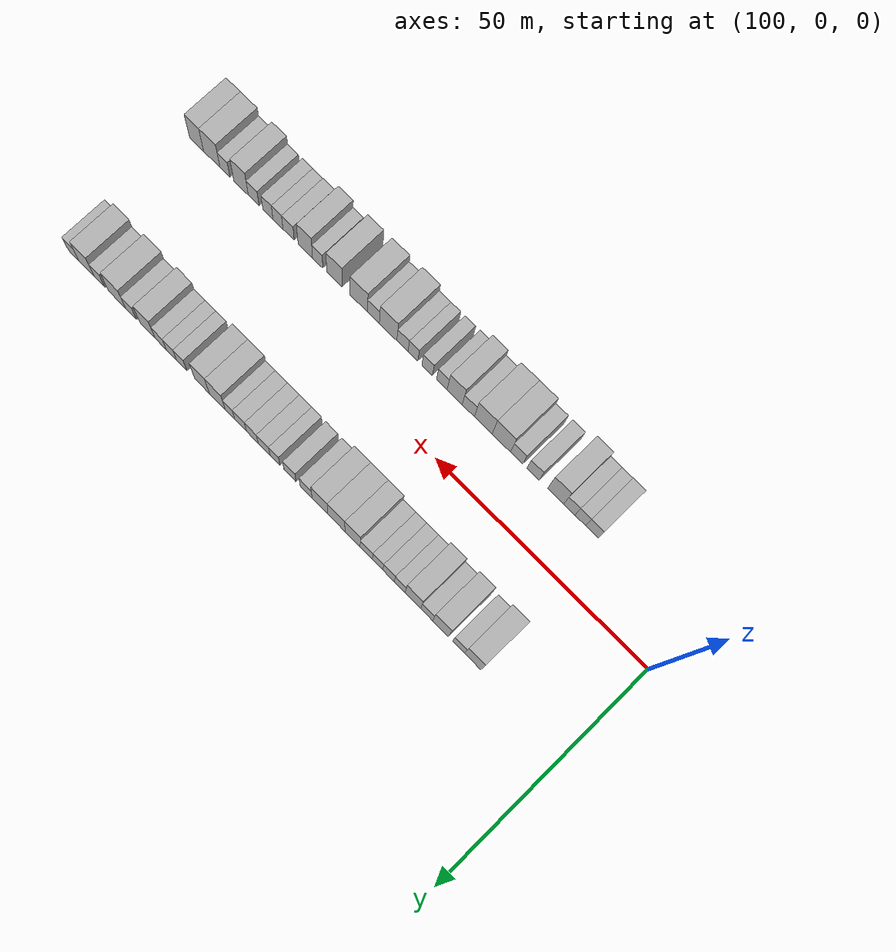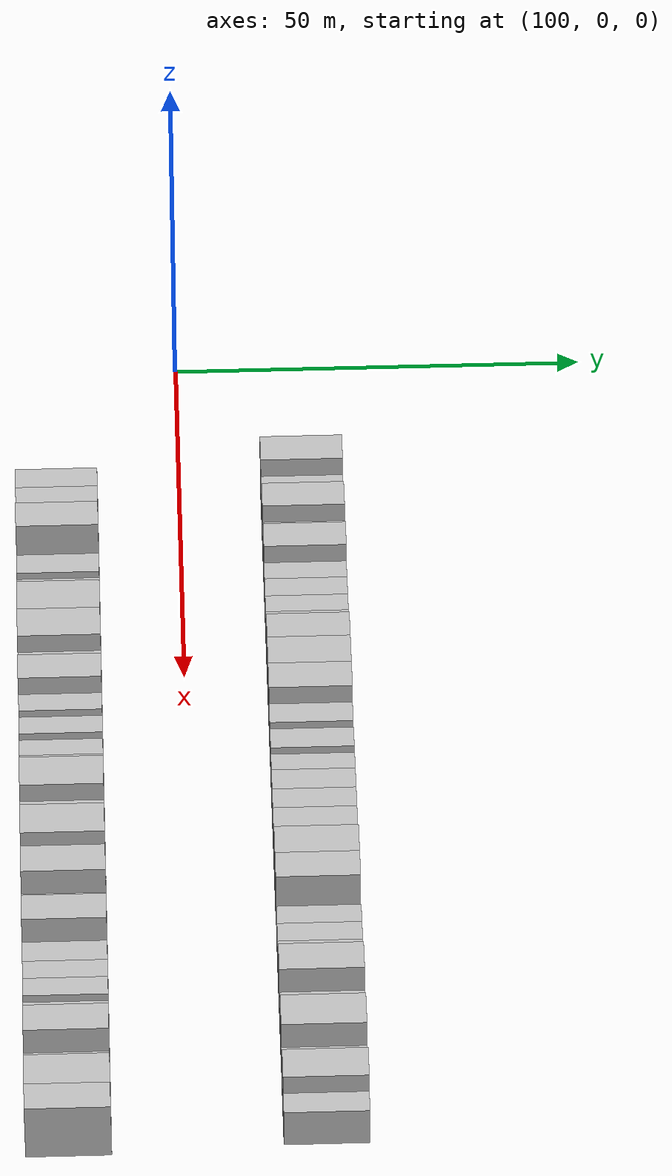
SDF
<sdf version="1.6">
 <world name="default">
  <model name="building_30">
   <static>1</static>
   <pose>121.2008 15.0000 0 0.000000 0.000000 1.570796</pose>
   <link name="link">
    <pose>0 0 4.50 0 0 0</pose>
    <collision name="collision"><geometry><box><size>10.0000 3.8482 9.0000</size></box></geometry></collision>
    <visual name="visual">
     <cast_shadows>0</cast_shadows>
     <geometry><box><size>10.0000 3.8482 9.0000</size></box></geometry>
     <material>
      <script>
       <uri>model://HANNAS_wall/materials/scripts</uri>
       <uri>model://HANNAS_wall/materials/textures</uri>
       <name>vrc/HANNAS_wall</name>
      </script>
     </material>
    </visual>
   </link>
  </model>
  <model name="building_31">
   <static>1</static>
   <pose>124.5239 15.0000 0 0.000000 0.000000 1.570796</pose>
   <link name="link">
    <pose>0 0 3.00 0 0 0</pose>
    <collision name="collision"><geometry><box><size>10.0000 2.7982 6.0000</size></box></geometry></collision>
    <visual name="visual">
     <cast_shadows>0</cast_shadows>
     <geometry><box><size>10.0000 2.7982 6.0000</size></box></geometry>
     <material>
      <script>
       <uri>model://HANNAS_wall/materials/scripts</uri>
       <uri>model://HANNAS_wall/materials/textures</uri>
       <name>vrc/HANNAS_wall</name>
      </script>
     </material>
    </visual>
   </link>
  </model>
  <model name="building_32">
   <static>1</static>
   <pose>128.7800 15.0000 0 0.000000 0.000000 1.570796</pose>
   <link name="link">
    <pose>0 0 4.50 0 0 0</pose>
    <collision name="collision"><geometry><box><size>10.0000 3.7140 9.0000</size></box></geometry></collision>
    <visual name="visual">
     <cast_shadows>0</cast_shadows>
     <geometry><box><size>10.0000 3.7140 9.0000</size></box></geometry>
     <material>
      <script>
       <uri>model://HANNAS_wall/materials/scripts</uri>
       <uri>model://HANNAS_wall/materials/textures</uri>
       <name>vrc/HANNAS_wall</name>
      </script>
     </material>
    </visual>
   </link>
  </model>
  <model name="building_33">
   <static>1</static>
   <pose>132.0614 15.0000 0 0.000000 0.000000 1.570796</pose>
   <link name="link">
    <pose>0 0 3.00 0 0 0</pose>
    <collision name="collision"><geometry><box><size>10.0000 2.8488 6.0000</size></box></geometry></collision>
    <visual name="visual">
     <cast_shadows>0</cast_shadows>
     <geometry><box><size>10.0000 2.8488 6.0000</size></box></geometry>
     <material>
      <script>
       <uri>model://HANNAS_wall/materials/scripts</uri>
       <uri>model://HANNAS_wall/materials/textures</uri>
       <name>vrc/HANNAS_wall</name>
      </script>
     </material>
    </visual>
   </link>
  </model>
  <model name="building_34">
   <static>1</static>
   <pose>135.3368 15.0000 0 0.000000 0.000000 1.570796</pose>
   <link name="link">
    <pose>0 0 4.50 0 0 0</pose>
    <collision name="collision"><geometry><box><size>10.0000 3.7020 9.0000</size></box></geometry></collision>
    <visual name="visual">
     <cast_shadows>0</cast_shadows>
     <geometry><box><size>10.0000 3.7020 9.0000</size></box></geometry>
     <material>
      <script>
       <uri>model://HANNAS_wall/materials/scripts</uri>
       <uri>model://HANNAS_wall/materials/textures</uri>
       <name>vrc/HANNAS_wall</name>
      </script>
     </material>
    </visual>
   </link>
  </model>
  <model name="building_35">
   <static>1</static>
   <pose>138.4774 15.0000 0 0.000000 0.000000 1.570796</pose>
   <link name="link">
    <pose>0 0 3.00 0 0 0</pose>
    <collision name="collision"><geometry><box><size>10.0000 2.5791 6.0000</size></box></geometry></collision>
    <visual name="visual">
     <cast_shadows>0</cast_shadows>
     <geometry><box><size>10.0000 2.5791 6.0000</size></box></geometry>
     <material>
      <script>
       <uri>model://HANNAS_wall/materials/scripts</uri>
       <uri>model://HANNAS_wall/materials/textures</uri>
       <name>vrc/HANNAS_wall</name>
      </script>
     </material>
    </visual>
   </link>
  </model>
  <model name="building_36">
   <static>1</static>
   <pose>141.1463 15.0000 0 0.000000 0.000000 1.570796</pose>
   <link name="link">
    <pose>0 0 3.00 0 0 0</pose>
    <collision name="collision"><geometry><box><size>10.0000 2.7586 6.0000</size></box></geometry></collision>
    <visual name="visual">
     <cast_shadows>0</cast_shadows>
     <geometry><box><size>10.0000 2.7586 6.0000</size></box></geometry>
     <material>
      <script>
       <uri>model://HANNAS_wall/materials/scripts</uri>
       <uri>model://HANNAS_wall/materials/textures</uri>
       <name>vrc/HANNAS_wall</name>
      </script>
     </material>
    </visual>
   </link>
  </model>
  <model name="building_37">
   <static>1</static>
   <pose>143.7925 15.0000 0 0.000000 0.000000 1.570796</pose>
   <link name="link">
    <pose>0 0 3.00 0 0 0</pose>
    <collision name="collision"><geometry><box><size>10.0000 2.5339 6.0000</size></box></geometry></collision>
    <visual name="visual">
     <cast_shadows>0</cast_shadows>
     <geometry><box><size>10.0000 2.5339 6.0000</size></box></geometry>
     <material>
      <script>
       <uri>model://HANNAS_wall/materials/scripts</uri>
       <uri>model://HANNAS_wall/materials/textures</uri>
       <name>vrc/HANNAS_wall</name>
      </script>
     </material>
    </visual>
   </link>
  </model>
  <model name="building_38">
   <static>1</static>
   <pose>146.5416 15.0000 0 0.000000 0.000000 1.570796</pose>
   <link name="link">
    <pose>0 0 3.00 0 0 0</pose>
    <collision name="collision"><geometry><box><size>10.0000 2.9643 6.0000</size></box></geometry></collision>
    <visual name="visual">
     <cast_shadows>0</cast_shadows>
     <geometry><box><size>10.0000 2.9643 6.0000</size></box></geometry>
     <material>
      <script>
       <uri>model://HANNAS_wall/materials/scripts</uri>
       <uri>model://HANNAS_wall/materials/textures</uri>
       <name>vrc/HANNAS_wall</name>
      </script>
     </material>
    </visual>
   </link>
  </model>
  <model name="building_39">
   <static>1</static>
   <pose>149.8689 15.0000 0 0.000000 0.000000 1.570796</pose>
   <link name="link">
    <pose>0 0 4.50 0 0 0</pose>
    <collision name="collision"><geometry><box><size>10.0000 3.6902 9.0000</size></box></geometry></collision>
    <visual name="visual">
     <cast_shadows>0</cast_shadows>
     <geometry><box><size>10.0000 3.6902 9.0000</size></box></geometry>
     <material>
      <script>
       <uri>model://HANNAS_wall/materials/scripts</uri>
       <uri>model://HANNAS_wall/materials/textures</uri>
       <name>vrc/HANNAS_wall</name>
      </script>
     </material>
    </visual>
   </link>
  </model>
  <model name="building_40">
   <static>1</static>
   <pose>153.7895 15.0000 0 0.000000 0.000000 1.570796</pose>
   <link name="link">
    <pose>0 0 4.50 0 0 0</pose>
    <collision name="collision"><geometry><box><size>10.0000 4.1510 9.0000</size></box></geometry></collision>
    <visual name="visual">
     <cast_shadows>0</cast_shadows>
     <geometry><box><size>10.0000 4.1510 9.0000</size></box></geometry>
     <material>
      <script>
       <uri>model://HANNAS_wall/materials/scripts</uri>
       <uri>model://HANNAS_wall/materials/textures</uri>
       <name>vrc/HANNAS_wall</name>
      </script>
     </material>
    </visual>
   </link>
  </model>
  <model name="building_41">
   <static>1</static>
   <pose>157.8020 15.0000 0 0.000000 0.000000 1.570796</pose>
   <link name="link">
    <pose>0 0 4.50 0 0 0</pose>
    <collision name="collision"><geometry><box><size>10.0000 3.8740 9.0000</size></box></geometry></collision>
    <visual name="visual">
     <cast_shadows>0</cast_shadows>
     <geometry><box><size>10.0000 3.8740 9.0000</size></box></geometry>
     <material>
      <script>
       <uri>model://HANNAS_wall/materials/scripts</uri>
       <uri>model://HANNAS_wall/materials/textures</uri>
       <name>vrc/HANNAS_wall</name>
      </script>
     </material>
    </visual>
   </link>
  </model>
  <model name="building_42">
   <static>1</static>
   <pose>161.2096 15.0000 0 0.000000 0.000000 1.570796</pose>
   <link name="link">
    <pose>0 0 3.00 0 0 0</pose>
    <collision name="collision"><geometry><box><size>10.0000 2.9412 6.0000</size></box></geometry></collision>
    <visual name="visual">
     <cast_shadows>0</cast_shadows>
     <geometry><box><size>10.0000 2.9412 6.0000</size></box></geometry>
     <material>
      <script>
       <uri>model://HANNAS_wall/materials/scripts</uri>
       <uri>model://HANNAS_wall/materials/textures</uri>
       <name>vrc/HANNAS_wall</name>
      </script>
     </material>
    </visual>
   </link>
  </model>
  <model name="building_43">
   <static>1</static>
   <pose>165.1654 15.0000 0 0.000000 0.000000 1.570796</pose>
   <link name="link">
    <pose>0 0 3.00 0 0 0</pose>
    <collision name="collision"><geometry><box><size>10.0000 2.9705 6.0000</size></box></geometry></collision>
    <visual name="visual">
     <cast_shadows>0</cast_shadows>
     <geometry><box><size>10.0000 2.9705 6.0000</size></box></geometry>
     <material>
      <script>
       <uri>model://HANNAS_wall/materials/scripts</uri>
       <uri>model://HANNAS_wall/materials/textures</uri>
       <name>vrc/HANNAS_wall</name>
      </script>
     </material>
    </visual>
   </link>
  </model>
  <model name="building_44">
   <static>1</static>
   <pose>168.8635 15.0000 0 0.000000 0.000000 1.570796</pose>
   <link name="link">
    <pose>0 0 3.00 0 0 0</pose>
    <collision name="collision"><geometry><box><size>10.0000 2.4256 6.0000</size></box></geometry></collision>
    <visual name="visual">
     <cast_shadows>0</cast_shadows>
     <geometry><box><size>10.0000 2.4256 6.0000</size></box></geometry>
     <material>
      <script>
       <uri>model://HANNAS_wall/materials/scripts</uri>
       <uri>model://HANNAS_wall/materials/textures</uri>
       <name>vrc/HANNAS_wall</name>
      </script>
     </material>
    </visual>
   </link>
  </model>
  <model name="building_45">
   <static>1</static>
   <pose>171.5646 15.0000 0 0.000000 0.000000 1.570796</pose>
   <link name="link">
    <pose>0 0 3.00 0 0 0</pose>
    <collision name="collision"><geometry><box><size>10.0000 2.9766 6.0000</size></box></geometry></collision>
    <visual name="visual">
     <cast_shadows>0</cast_shadows>
     <geometry><box><size>10.0000 2.9766 6.0000</size></box></geometry>
     <material>
      <script>
       <uri>model://HANNAS_wall/materials/scripts</uri>
       <uri>model://HANNAS_wall/materials/textures</uri>
       <name>vrc/HANNAS_wall</name>
      </script>
     </material>
    </visual>
   </link>
  </model>
  <model name="building_46">
   <static>1</static>
   <pose>174.5100 15.0000 0 0.000000 0.000000 1.570796</pose>
   <link name="link">
    <pose>0 0 3.00 0 0 0</pose>
    <collision name="collision"><geometry><box><size>10.0000 2.9141 6.0000</size></box></geometry></collision>
    <visual name="visual">
     <cast_shadows>0</cast_shadows>
     <geometry><box><size>10.0000 2.9141 6.0000</size></box></geometry>
     <material>
      <script>
       <uri>model://HANNAS_wall/materials/scripts</uri>
       <uri>model://HANNAS_wall/materials/textures</uri>
       <name>vrc/HANNAS_wall</name>
      </script>
     </material>
    </visual>
   </link>
  </model>
  <model name="building_47">
   <static>1</static>
   <pose>177.4632 15.0000 0 0.000000 0.000000 1.570796</pose>
   <link name="link">
    <pose>0 0 3.00 0 0 0</pose>
    <collision name="collision"><geometry><box><size>10.0000 2.9924 6.0000</size></box></geometry></collision>
    <visual name="visual">
     <cast_shadows>0</cast_shadows>
     <geometry><box><size>10.0000 2.9924 6.0000</size></box></geometry>
     <material>
      <script>
       <uri>model://HANNAS_wall/materials/scripts</uri>
       <uri>model://HANNAS_wall/materials/textures</uri>
       <name>vrc/HANNAS_wall</name>
      </script>
     </material>
    </visual>
   </link>
  </model>
  <model name="building_48">
   <static>1</static>
   <pose>180.1617 15.0000 0 0.000000 0.000000 1.570796</pose>
   <link name="link">
    <pose>0 0 3.00 0 0 0</pose>
    <collision name="collision"><geometry><box><size>10.0000 2.4045 6.0000</size></box></geometry></collision>
    <visual name="visual">
     <cast_shadows>0</cast_shadows>
     <geometry><box><size>10.0000 2.4045 6.0000</size></box></geometry>
     <material>
      <script>
       <uri>model://HANNAS_wall/materials/scripts</uri>
       <uri>model://HANNAS_wall/materials/textures</uri>
       <name>vrc/HANNAS_wall</name>
      </script>
     </material>
    </visual>
   </link>
  </model>
  <model name="building_49">
   <static>1</static>
   <pose>183.3713 15.0000 0 0.000000 0.000000 1.570796</pose>
   <link name="link">
    <pose>0 0 4.50 0 0 0</pose>
    <collision name="collision"><geometry><box><size>10.0000 4.0148 9.0000</size></box></geometry></collision>
    <visual name="visual">
     <cast_shadows>0</cast_shadows>
     <geometry><box><size>10.0000 4.0148 9.0000</size></box></geometry>
     <material>
      <script>
       <uri>model://HANNAS_wall/materials/scripts</uri>
       <uri>model://HANNAS_wall/materials/textures</uri>
       <name>vrc/HANNAS_wall</name>
      </script>
     </material>
    </visual>
   </link>
  </model>
  <model name="building_50">
   <static>1</static>
   <pose>187.2475 15.0000 0 0.000000 0.000000 1.570796</pose>
   <link name="link">
    <pose>0 0 4.50 0 0 0</pose>
    <collision name="collision"><geometry><box><size>10.0000 3.7375 9.0000</size></box></geometry></collision>
    <visual name="visual">
     <cast_shadows>0</cast_shadows>
     <geometry><box><size>10.0000 3.7375 9.0000</size></box></geometry>
     <material>
      <script>
       <uri>model://HANNAS_wall/materials/scripts</uri>
       <uri>model://HANNAS_wall/materials/textures</uri>
       <name>vrc/HANNAS_wall</name>
      </script>
     </material>
    </visual>
   </link>
  </model>
  <model name="building_51">
   <static>1</static>
   <pose>192.4228 15.0000 0 0.000000 0.000000 1.570796</pose>
   <link name="link">
    <pose>0 0 3.00 0 0 0</pose>
    <collision name="collision"><geometry><box><size>10.0000 2.6130 6.0000</size></box></geometry></collision>
    <visual name="visual">
     <cast_shadows>0</cast_shadows>
     <geometry><box><size>10.0000 2.6130 6.0000</size></box></geometry>
     <material>
      <script>
       <uri>model://HANNAS_wall/materials/scripts</uri>
       <uri>model://HANNAS_wall/materials/textures</uri>
       <name>vrc/HANNAS_wall</name>
      </script>
     </material>
    </visual>
   </link>
  </model>
  <model name="building_52">
   <static>1</static>
   <pose>195.0679 15.0000 0 0.000000 0.000000 1.570796</pose>
   <link name="link">
    <pose>0 0 3.00 0 0 0</pose>
    <collision name="collision"><geometry><box><size>10.0000 2.6773 6.0000</size></box></geometry></collision>
    <visual name="visual">
     <cast_shadows>0</cast_shadows>
     <geometry><box><size>10.0000 2.6773 6.0000</size></box></geometry>
     <material>
      <script>
       <uri>model://HANNAS_wall/materials/scripts</uri>
       <uri>model://HANNAS_wall/materials/textures</uri>
       <name>vrc/HANNAS_wall</name>
      </script>
     </material>
    </visual>
   </link>
  </model>
  <model name="building_53">
   <static>1</static>
   <pose>197.8263 15.0000 0 0.000000 0.000000 1.570796</pose>
   <link name="link">
    <pose>0 0 3.00 0 0 0</pose>
    <collision name="collision"><geometry><box><size>10.0000 2.8395 6.0000</size></box></geometry></collision>
    <visual name="visual">
     <cast_shadows>0</cast_shadows>
     <geometry><box><size>10.0000 2.8395 6.0000</size></box></geometry>
     <material>
      <script>
       <uri>model://HANNAS_wall/materials/scripts</uri>
       <uri>model://HANNAS_wall/materials/textures</uri>
       <name>vrc/HANNAS_wall</name>
      </script>
     </material>
    </visual>
   </link>
  </model>
  <model name="building_54">
   <static>1</static>
   <pose>201.1836 15.0000 0 0.000000 0.000000 1.570796</pose>
   <link name="link">
    <pose>0 0 4.50 0 0 0</pose>
    <collision name="collision"><geometry><box><size>10.0000 3.8752 9.0000</size></box></geometry></collision>
    <visual name="visual">
     <cast_shadows>0</cast_shadows>
     <geometry><box><size>10.0000 3.8752 9.0000</size></box></geometry>
     <material>
      <script>
       <uri>model://HANNAS_wall/materials/scripts</uri>
       <uri>model://HANNAS_wall/materials/textures</uri>
       <name>vrc/HANNAS_wall</name>
      </script>
     </material>
    </visual>
   </link>
  </model>
  <model name="building_55">
   <static>1</static>
   <pose>205.5317 15.0000 0 0.000000 0.000000 1.570796</pose>
   <link name="link">
    <pose>0 0 3.00 0 0 0</pose>
    <collision name="collision"><geometry><box><size>10.0000 2.8210 6.0000</size></box></geometry></collision>
    <visual name="visual">
     <cast_shadows>0</cast_shadows>
     <geometry><box><size>10.0000 2.8210 6.0000</size></box></geometry>
     <material>
      <script>
       <uri>model://HANNAS_wall/materials/scripts</uri>
       <uri>model://HANNAS_wall/materials/textures</uri>
       <name>vrc/HANNAS_wall</name>
      </script>
     </material>
    </visual>
   </link>
  </model>
  <model name="building_56">
   <static>1</static>
   <pose>209.1608 15.0000 0 0.000000 0.000000 1.570796</pose>
   <link name="link">
    <pose>0 0 4.50 0 0 0</pose>
    <collision name="collision"><geometry><box><size>10.0000 4.4372 9.0000</size></box></geometry></collision>
    <visual name="visual">
     <cast_shadows>0</cast_shadows>
     <geometry><box><size>10.0000 4.4372 9.0000</size></box></geometry>
     <material>
      <script>
       <uri>model://HANNAS_wall/materials/scripts</uri>
       <uri>model://HANNAS_wall/materials/textures</uri>
       <name>vrc/HANNAS_wall</name>
      </script>
     </material>
    </visual>
   </link>
  </model>
  <model name="building_57">
   <static>1</static>
   <pose>213.7169 15.0000 0 0.000000 0.000000 1.570796</pose>
   <link name="link">
    <pose>0 0 3.00 0 0 0</pose>
    <collision name="collision"><geometry><box><size>10.0000 2.6751 6.0000</size></box></geometry></collision>
    <visual name="visual">
     <cast_shadows>0</cast_shadows>
     <geometry><box><size>10.0000 2.6751 6.0000</size></box></geometry>
     <material>
      <script>
       <uri>model://HANNAS_wall/materials/scripts</uri>
       <uri>model://HANNAS_wall/materials/textures</uri>
       <name>vrc/HANNAS_wall</name>
      </script>
     </material>
    </visual>
   </link>
  </model>
  <model name="building_58">
   <static>1</static>
   <pose>217.1153 15.0000 0 0.000000 0.000000 1.570796</pose>
   <link name="link">
    <pose>0 0 4.50 0 0 0</pose>
    <collision name="collision"><geometry><box><size>10.0000 4.1216 9.0000</size></box></geometry></collision>
    <visual name="visual">
     <cast_shadows>0</cast_shadows>
     <geometry><box><size>10.0000 4.1216 9.0000</size></box></geometry>
     <material>
      <script>
       <uri>model://HANNAS_wall/materials/scripts</uri>
       <uri>model://HANNAS_wall/materials/textures</uri>
       <name>vrc/HANNAS_wall</name>
      </script>
     </material>
    </visual>
   </link>
  </model>
  <model name="building_59">
   <static>1</static>
   <pose>220.6098 15.0000 0 0.000000 0.000000 1.570796</pose>
   <link name="link">
    <pose>0 0 3.00 0 0 0</pose>
    <collision name="collision"><geometry><box><size>10.0000 2.8673 6.0000</size></box></geometry></collision>
    <visual name="visual">
     <cast_shadows>0</cast_shadows>
     <geometry><box><size>10.0000 2.8673 6.0000</size></box></geometry>
     <material>
      <script>
       <uri>model://HANNAS_wall/materials/scripts</uri>
       <uri>model://HANNAS_wall/materials/textures</uri>
       <name>vrc/HANNAS_wall</name>
      </script>
     </material>
    </visual>
   </link>
  </model>
  <model name="building_89">
   <static>1</static>
   <pose>122.5188 -15.0000 0 0.000000 0.000000 1.570796</pose>
   <link name="link">
    <pose>0 0 3.00 0 0 0</pose>
    <collision name="collision"><geometry><box><size>10.0000 2.9659 6.0000</size></box></geometry></collision>
    <visual name="visual">
     <cast_shadows>0</cast_shadows>
     <geometry><box><size>10.0000 2.9659 6.0000</size></box></geometry>
     <material>
      <script>
       <uri>model://HANNAS_wall/materials/scripts</uri>
       <uri>model://HANNAS_wall/materials/textures</uri>
       <name>vrc/HANNAS_wall</name>
      </script>
     </material>
    </visual>
   </link>
  </model>
  <model name="building_90">
   <static>1</static>
   <pose>125.2624 -15.0000 0 0.000000 0.000000 1.570796</pose>
   <link name="link">
    <pose>0 0 3.00 0 0 0</pose>
    <collision name="collision"><geometry><box><size>10.0000 2.5212 6.0000</size></box></geometry></collision>
    <visual name="visual">
     <cast_shadows>0</cast_shadows>
     <geometry><box><size>10.0000 2.5212 6.0000</size></box></geometry>
     <material>
      <script>
       <uri>model://HANNAS_wall/materials/scripts</uri>
       <uri>model://HANNAS_wall/materials/textures</uri>
       <name>vrc/HANNAS_wall</name>
      </script>
     </material>
    </visual>
   </link>
  </model>
  <model name="building_91">
   <static>1</static>
   <pose>127.8563 -15.0000 0 0.000000 0.000000 1.570796</pose>
   <link name="link">
    <pose>0 0 3.00 0 0 0</pose>
    <collision name="collision"><geometry><box><size>10.0000 2.6667 6.0000</size></box></geometry></collision>
    <visual name="visual">
     <cast_shadows>0</cast_shadows>
     <geometry><box><size>10.0000 2.6667 6.0000</size></box></geometry>
     <material>
      <script>
       <uri>model://HANNAS_wall/materials/scripts</uri>
       <uri>model://HANNAS_wall/materials/textures</uri>
       <name>vrc/HANNAS_wall</name>
      </script>
     </material>
    </visual>
   </link>
  </model>
  <model name="building_92">
   <static>1</static>
   <pose>131.0899 -15.0000 0 0.000000 0.000000 1.570796</pose>
   <link name="link">
    <pose>0 0 4.50 0 0 0</pose>
    <collision name="collision"><geometry><box><size>10.0000 3.8004 9.0000</size></box></geometry></collision>
    <visual name="visual">
     <cast_shadows>0</cast_shadows>
     <geometry><box><size>10.0000 3.8004 9.0000</size></box></geometry>
     <material>
      <script>
       <uri>model://HANNAS_wall/materials/scripts</uri>
       <uri>model://HANNAS_wall/materials/textures</uri>
       <name>vrc/HANNAS_wall</name>
      </script>
     </material>
    </visual>
   </link>
  </model>
  <model name="building_93">
   <static>1</static>
   <pose>136.4632 -15.0000 0 0.000000 0.000000 1.570796</pose>
   <link name="link">
    <pose>0 0 3.00 0 0 0</pose>
    <collision name="collision"><geometry><box><size>10.0000 2.9462 6.0000</size></box></geometry></collision>
    <visual name="visual">
     <cast_shadows>0</cast_shadows>
     <geometry><box><size>10.0000 2.9462 6.0000</size></box></geometry>
     <material>
      <script>
       <uri>model://HANNAS_wall/materials/scripts</uri>
       <uri>model://HANNAS_wall/materials/textures</uri>
       <name>vrc/HANNAS_wall</name>
      </script>
     </material>
    </visual>
   </link>
  </model>
  <model name="building_94">
   <static>1</static>
   <pose>140.4171 -15.0000 0 0.000000 0.000000 1.570796</pose>
   <link name="link">
    <pose>0 0 3.00 0 0 0</pose>
    <collision name="collision"><geometry><box><size>10.0000 2.9617 6.0000</size></box></geometry></collision>
    <visual name="visual">
     <cast_shadows>0</cast_shadows>
     <geometry><box><size>10.0000 2.9617 6.0000</size></box></geometry>
     <material>
      <script>
       <uri>model://HANNAS_wall/materials/scripts</uri>
       <uri>model://HANNAS_wall/materials/textures</uri>
       <name>vrc/HANNAS_wall</name>
      </script>
     </material>
    </visual>
   </link>
  </model>
  <model name="building_95">
   <static>1</static>
   <pose>144.0984 -15.0000 0 0.000000 0.000000 1.570796</pose>
   <link name="link">
    <pose>0 0 4.50 0 0 0</pose>
    <collision name="collision"><geometry><box><size>10.0000 4.4010 9.0000</size></box></geometry></collision>
    <visual name="visual">
     <cast_shadows>0</cast_shadows>
     <geometry><box><size>10.0000 4.4010 9.0000</size></box></geometry>
     <material>
      <script>
       <uri>model://HANNAS_wall/materials/scripts</uri>
       <uri>model://HANNAS_wall/materials/textures</uri>
       <name>vrc/HANNAS_wall</name>
      </script>
     </material>
    </visual>
   </link>
  </model>
  <model name="building_96">
   <static>1</static>
   <pose>148.4553 -15.0000 0 0.000000 0.000000 1.570796</pose>
   <link name="link">
    <pose>0 0 4.50 0 0 0</pose>
    <collision name="collision"><geometry><box><size>10.0000 4.3129 9.0000</size></box></geometry></collision>
    <visual name="visual">
     <cast_shadows>0</cast_shadows>
     <geometry><box><size>10.0000 4.3129 9.0000</size></box></geometry>
     <material>
      <script>
       <uri>model://HANNAS_wall/materials/scripts</uri>
       <uri>model://HANNAS_wall/materials/textures</uri>
       <name>vrc/HANNAS_wall</name>
      </script>
     </material>
    </visual>
   </link>
  </model>
  <model name="building_97">
   <static>1</static>
   <pose>152.1061 -15.0000 0 0.000000 0.000000 1.570796</pose>
   <link name="link">
    <pose>0 0 3.00 0 0 0</pose>
    <collision name="collision"><geometry><box><size>10.0000 2.9887 6.0000</size></box></geometry></collision>
    <visual name="visual">
     <cast_shadows>0</cast_shadows>
     <geometry><box><size>10.0000 2.9887 6.0000</size></box></geometry>
     <material>
      <script>
       <uri>model://HANNAS_wall/materials/scripts</uri>
       <uri>model://HANNAS_wall/materials/textures</uri>
       <name>vrc/HANNAS_wall</name>
      </script>
     </material>
    </visual>
   </link>
  </model>
  <model name="building_98">
   <static>1</static>
   <pose>155.4514 -15.0000 0 0.000000 0.000000 1.570796</pose>
   <link name="link">
    <pose>0 0 4.50 0 0 0</pose>
    <collision name="collision"><geometry><box><size>10.0000 3.7020 9.0000</size></box></geometry></collision>
    <visual name="visual">
     <cast_shadows>0</cast_shadows>
     <geometry><box><size>10.0000 3.7020 9.0000</size></box></geometry>
     <material>
      <script>
       <uri>model://HANNAS_wall/materials/scripts</uri>
       <uri>model://HANNAS_wall/materials/textures</uri>
       <name>vrc/HANNAS_wall</name>
      </script>
     </material>
    </visual>
   </link>
  </model>
  <model name="building_99">
   <static>1</static>
   <pose>158.5962 -15.0000 0 0.000000 0.000000 1.570796</pose>
   <link name="link">
    <pose>0 0 3.00 0 0 0</pose>
    <collision name="collision"><geometry><box><size>10.0000 2.5876 6.0000</size></box></geometry></collision>
    <visual name="visual">
     <cast_shadows>0</cast_shadows>
     <geometry><box><size>10.0000 2.5876 6.0000</size></box></geometry>
     <material>
      <script>
       <uri>model://HANNAS_wall/materials/scripts</uri>
       <uri>model://HANNAS_wall/materials/textures</uri>
       <name>vrc/HANNAS_wall</name>
      </script>
     </material>
    </visual>
   </link>
  </model>
  <model name="building_100">
   <static>1</static>
   <pose>162.1948 -15.0000 0 0.000000 0.000000 1.570796</pose>
   <link name="link">
    <pose>0 0 3.00 0 0 0</pose>
    <collision name="collision"><geometry><box><size>10.0000 2.6095 6.0000</size></box></geometry></collision>
    <visual name="visual">
     <cast_shadows>0</cast_shadows>
     <geometry><box><size>10.0000 2.6095 6.0000</size></box></geometry>
     <material>
      <script>
       <uri>model://HANNAS_wall/materials/scripts</uri>
       <uri>model://HANNAS_wall/materials/textures</uri>
       <name>vrc/HANNAS_wall</name>
      </script>
     </material>
    </visual>
   </link>
  </model>
  <model name="building_101">
   <static>1</static>
   <pose>165.7000 -15.0000 0 0.000000 0.000000 1.570796</pose>
   <link name="link">
    <pose>0 0 3.00 0 0 0</pose>
    <collision name="collision"><geometry><box><size>10.0000 2.4009 6.0000</size></box></geometry></collision>
    <visual name="visual">
     <cast_shadows>0</cast_shadows>
     <geometry><box><size>10.0000 2.4009 6.0000</size></box></geometry>
     <material>
      <script>
       <uri>model://HANNAS_wall/materials/scripts</uri>
       <uri>model://HANNAS_wall/materials/textures</uri>
       <name>vrc/HANNAS_wall</name>
      </script>
     </material>
    </visual>
   </link>
  </model>
  <model name="building_102">
   <static>1</static>
   <pose>168.3000 -15.0000 0 0.000000 0.000000 1.570796</pose>
   <link name="link">
    <pose>0 0 3.00 0 0 0</pose>
    <collision name="collision"><geometry><box><size>10.0000 2.7991 6.0000</size></box></geometry></collision>
    <visual name="visual">
     <cast_shadows>0</cast_shadows>
     <geometry><box><size>10.0000 2.7991 6.0000</size></box></geometry>
     <material>
      <script>
       <uri>model://HANNAS_wall/materials/scripts</uri>
       <uri>model://HANNAS_wall/materials/textures</uri>
       <name>vrc/HANNAS_wall</name>
      </script>
     </material>
    </visual>
   </link>
  </model>
  <model name="building_103">
   <static>1</static>
   <pose>171.8786 -15.0000 0 0.000000 0.000000 1.570796</pose>
   <link name="link">
    <pose>0 0 4.50 0 0 0</pose>
    <collision name="collision"><geometry><box><size>10.0000 4.3580 9.0000</size></box></geometry></collision>
    <visual name="visual">
     <cast_shadows>0</cast_shadows>
     <geometry><box><size>10.0000 4.3580 9.0000</size></box></geometry>
     <material>
      <script>
       <uri>model://HANNAS_wall/materials/scripts</uri>
       <uri>model://HANNAS_wall/materials/textures</uri>
       <name>vrc/HANNAS_wall</name>
      </script>
     </material>
    </visual>
   </link>
  </model>
  <model name="building_104">
   <static>1</static>
   <pose>175.5536 -15.0000 0 0.000000 0.000000 1.570796</pose>
   <link name="link">
    <pose>0 0 3.00 0 0 0</pose>
    <collision name="collision"><geometry><box><size>10.0000 2.9920 6.0000</size></box></geometry></collision>
    <visual name="visual">
     <cast_shadows>0</cast_shadows>
     <geometry><box><size>10.0000 2.9920 6.0000</size></box></geometry>
     <material>
      <script>
       <uri>model://HANNAS_wall/materials/scripts</uri>
       <uri>model://HANNAS_wall/materials/textures</uri>
       <name>vrc/HANNAS_wall</name>
      </script>
     </material>
    </visual>
   </link>
  </model>
  <model name="building_105">
   <static>1</static>
   <pose>179.2335 -15.0000 0 0.000000 0.000000 1.570796</pose>
   <link name="link">
    <pose>0 0 4.50 0 0 0</pose>
    <collision name="collision"><geometry><box><size>10.0000 4.3678 9.0000</size></box></geometry></collision>
    <visual name="visual">
     <cast_shadows>0</cast_shadows>
     <geometry><box><size>10.0000 4.3678 9.0000</size></box></geometry>
     <material>
      <script>
       <uri>model://HANNAS_wall/materials/scripts</uri>
       <uri>model://HANNAS_wall/materials/textures</uri>
       <name>vrc/HANNAS_wall</name>
      </script>
     </material>
    </visual>
   </link>
  </model>
  <model name="building_106">
   <static>1</static>
   <pose>185.3685 -15.0000 0 0.000000 0.000000 1.570796</pose>
   <link name="link">
    <pose>0 0 4.50 0 0 0</pose>
    <collision name="collision"><geometry><box><size>10.0000 3.9023 9.0000</size></box></geometry></collision>
    <visual name="visual">
     <cast_shadows>0</cast_shadows>
     <geometry><box><size>10.0000 3.9023 9.0000</size></box></geometry>
     <material>
      <script>
       <uri>model://HANNAS_wall/materials/scripts</uri>
       <uri>model://HANNAS_wall/materials/textures</uri>
       <name>vrc/HANNAS_wall</name>
      </script>
     </material>
    </visual>
   </link>
  </model>
  <model name="building_107">
   <static>1</static>
   <pose>189.6275 -15.0000 0 0.000000 0.000000 1.570796</pose>
   <link name="link">
    <pose>0 0 3.00 0 0 0</pose>
    <collision name="collision"><geometry><box><size>10.0000 2.6156 6.0000</size></box></geometry></collision>
    <visual name="visual">
     <cast_shadows>0</cast_shadows>
     <geometry><box><size>10.0000 2.6156 6.0000</size></box></geometry>
     <material>
      <script>
       <uri>model://HANNAS_wall/materials/scripts</uri>
       <uri>model://HANNAS_wall/materials/textures</uri>
       <name>vrc/HANNAS_wall</name>
      </script>
     </material>
    </visual>
   </link>
  </model>
  <model name="building_108">
   <static>1</static>
   <pose>192.7785 -15.0000 0 0.000000 0.000000 1.570796</pose>
   <link name="link">
    <pose>0 0 4.50 0 0 0</pose>
    <collision name="collision"><geometry><box><size>10.0000 3.6864 9.0000</size></box></geometry></collision>
    <visual name="visual">
     <cast_shadows>0</cast_shadows>
     <geometry><box><size>10.0000 3.6864 9.0000</size></box></geometry>
     <material>
      <script>
       <uri>model://HANNAS_wall/materials/scripts</uri>
       <uri>model://HANNAS_wall/materials/textures</uri>
       <name>vrc/HANNAS_wall</name>
      </script>
     </material>
    </visual>
   </link>
  </model>
  <model name="building_109">
   <static>1</static>
   <pose>197.0679 -15.0000 0 0.000000 0.000000 1.570796</pose>
   <link name="link">
    <pose>0 0 3.00 0 0 0</pose>
    <collision name="collision"><geometry><box><size>10.0000 2.8924 6.0000</size></box></geometry></collision>
    <visual name="visual">
     <cast_shadows>0</cast_shadows>
     <geometry><box><size>10.0000 2.8924 6.0000</size></box></geometry>
     <material>
      <script>
       <uri>model://HANNAS_wall/materials/scripts</uri>
       <uri>model://HANNAS_wall/materials/textures</uri>
       <name>vrc/HANNAS_wall</name>
      </script>
     </material>
    </visual>
   </link>
  </model>
  <model name="building_110">
   <static>1</static>
   <pose>199.8000 -15.0000 0 0.000000 0.000000 1.570796</pose>
   <link name="link">
    <pose>0 0 3.00 0 0 0</pose>
    <collision name="collision"><geometry><box><size>10.0000 2.5718 6.0000</size></box></geometry></collision>
    <visual name="visual">
     <cast_shadows>0</cast_shadows>
     <geometry><box><size>10.0000 2.5718 6.0000</size></box></geometry>
     <material>
      <script>
       <uri>model://HANNAS_wall/materials/scripts</uri>
       <uri>model://HANNAS_wall/materials/textures</uri>
       <name>vrc/HANNAS_wall</name>
      </script>
     </material>
    </visual>
   </link>
  </model>
  <model name="building_111">
   <static>1</static>
   <pose>202.3934 -15.0000 0 0.000000 0.000000 1.570796</pose>
   <link name="link">
    <pose>0 0 3.00 0 0 0</pose>
    <collision name="collision"><geometry><box><size>10.0000 2.6150 6.0000</size></box></geometry></collision>
    <visual name="visual">
     <cast_shadows>0</cast_shadows>
     <geometry><box><size>10.0000 2.6150 6.0000</size></box></geometry>
     <material>
      <script>
       <uri>model://HANNAS_wall/materials/scripts</uri>
       <uri>model://HANNAS_wall/materials/textures</uri>
       <name>vrc/HANNAS_wall</name>
      </script>
     </material>
    </visual>
   </link>
  </model>
  <model name="building_112">
   <static>1</static>
   <pose>206.1029 -15.0000 0 0.000000 0.000000 1.570796</pose>
   <link name="link">
    <pose>0 0 3.00 0 0 0</pose>
    <collision name="collision"><geometry><box><size>10.0000 2.8040 6.0000</size></box></geometry></collision>
    <visual name="visual">
     <cast_shadows>0</cast_shadows>
     <geometry><box><size>10.0000 2.8040 6.0000</size></box></geometry>
     <material>
      <script>
       <uri>model://HANNAS_wall/materials/scripts</uri>
       <uri>model://HANNAS_wall/materials/textures</uri>
       <name>vrc/HANNAS_wall</name>
      </script>
     </material>
    </visual>
   </link>
  </model>
  <model name="building_113">
   <static>1</static>
   <pose>209.3861 -15.0000 0 0.000000 0.000000 1.570796</pose>
   <link name="link">
    <pose>0 0 4.50 0 0 0</pose>
    <collision name="collision"><geometry><box><size>10.0000 3.7625 9.0000</size></box></geometry></collision>
    <visual name="visual">
     <cast_shadows>0</cast_shadows>
     <geometry><box><size>10.0000 3.7625 9.0000</size></box></geometry>
     <material>
      <script>
       <uri>model://HANNAS_wall/materials/scripts</uri>
       <uri>model://HANNAS_wall/materials/textures</uri>
       <name>vrc/HANNAS_wall</name>
      </script>
     </material>
    </visual>
   </link>
  </model>
  <model name="building_114">
   <static>1</static>
   <pose>213.5836 -15.0000 0 0.000000 0.000000 1.570796</pose>
   <link name="link">
    <pose>0 0 3.00 0 0 0</pose>
    <collision name="collision"><geometry><box><size>10.0000 2.6324 6.0000</size></box></geometry></collision>
    <visual name="visual">
     <cast_shadows>0</cast_shadows>
     <geometry><box><size>10.0000 2.6324 6.0000</size></box></geometry>
     <material>
      <script>
       <uri>model://HANNAS_wall/materials/scripts</uri>
       <uri>model://HANNAS_wall/materials/textures</uri>
       <name>vrc/HANNAS_wall</name>
      </script>
     </material>
    </visual>
   </link>
  </model>
  <model name="building_115">
   <static>1</static>
   <pose>217.0585 -15.0000 0 0.000000 0.000000 1.570796</pose>
   <link name="link">
    <pose>0 0 4.50 0 0 0</pose>
    <collision name="collision"><geometry><box><size>10.0000 4.3173 9.0000</size></box></geometry></collision>
    <visual name="visual">
     <cast_shadows>0</cast_shadows>
     <geometry><box><size>10.0000 4.3173 9.0000</size></box></geometry>
     <material>
      <script>
       <uri>model://HANNAS_wall/materials/scripts</uri>
       <uri>model://HANNAS_wall/materials/textures</uri>
       <name>vrc/HANNAS_wall</name>
      </script>
     </material>
    </visual>
   </link>
  </model>
  <model name="building_116">
   <static>1</static>
   <pose>221.0598 -15.0000 0 0.000000 0.000000 1.570796</pose>
   <link name="link">
    <pose>0 0 4.50 0 0 0</pose>
    <collision name="collision"><geometry><box><size>10.0000 3.6853 9.0000</size></box></geometry></collision>
    <visual name="visual">
     <cast_shadows>0</cast_shadows>
     <geometry><box><size>10.0000 3.6853 9.0000</size></box></geometry>
     <material>
      <script>
       <uri>model://HANNAS_wall/materials/scripts</uri>
       <uri>model://HANNAS_wall/materials/textures</uri>
       <name>vrc/HANNAS_wall</name>
      </script>
     </material>
    </visual>
   </link>
  </model>
 </world>
</sdf>
